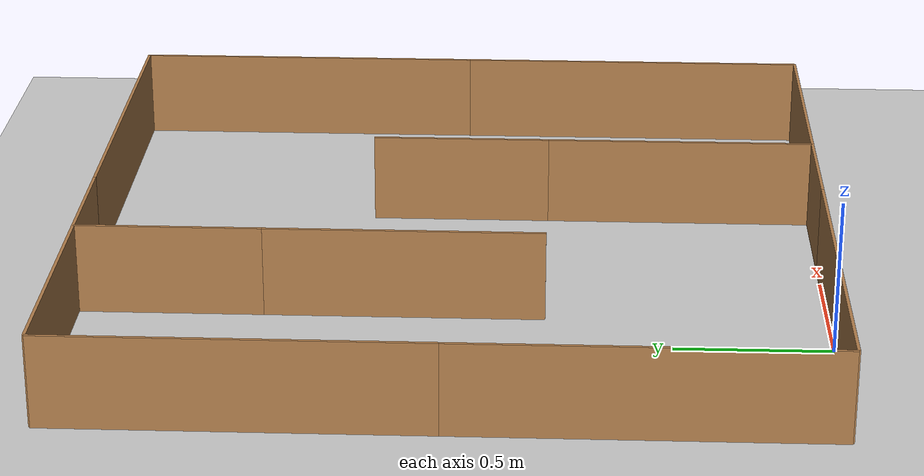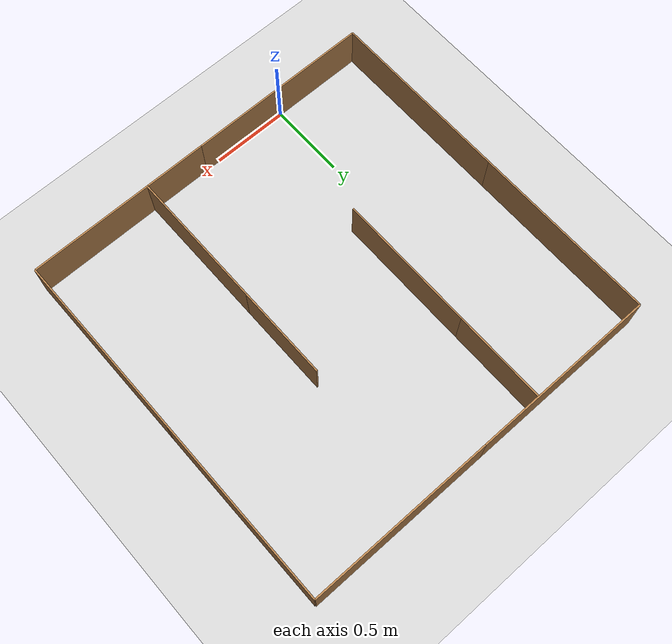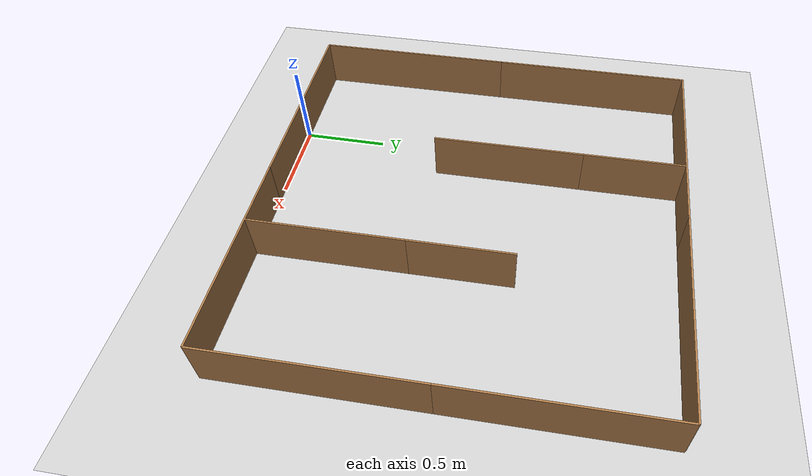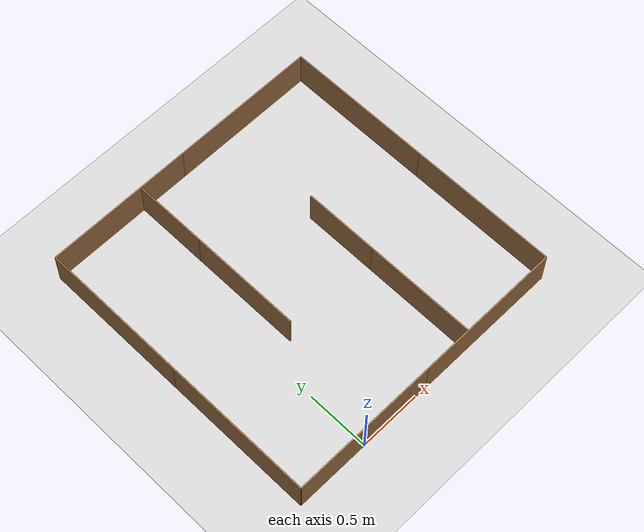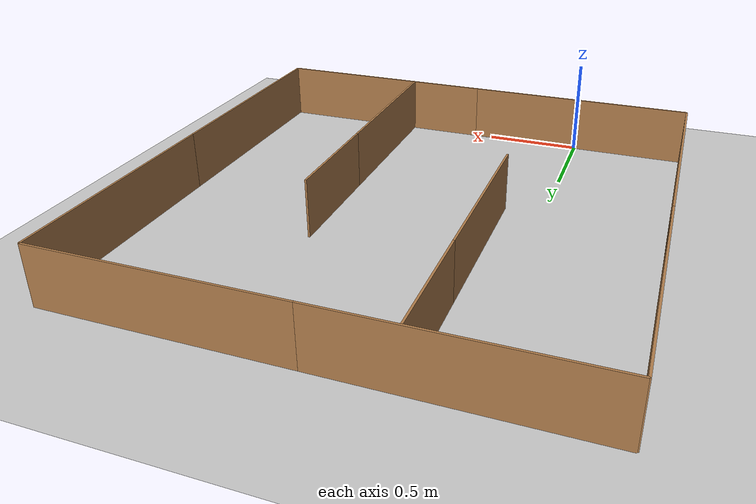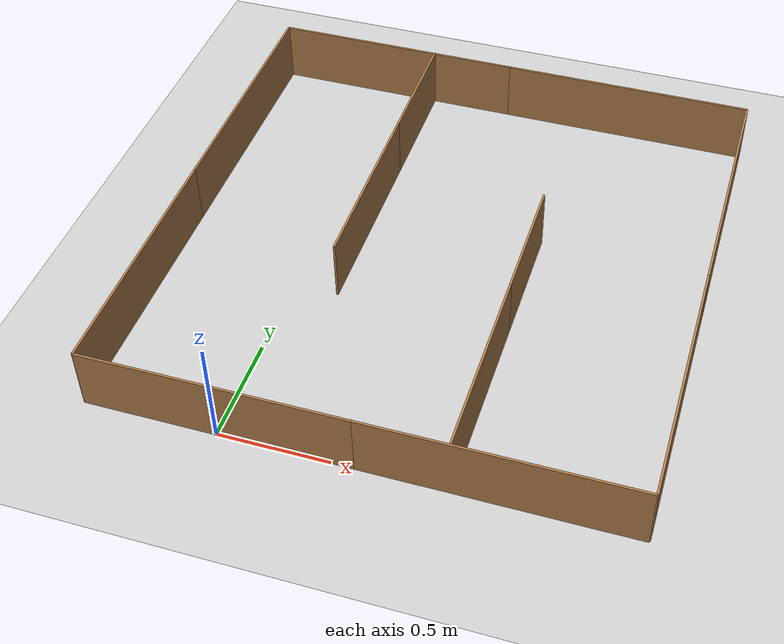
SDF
<sdf version="1.7">
 <world name="default">
  <light name="sun" type="directional">
   <pose>0 0 10 0 -0 0</pose>
   <diffuse>0.8 0.8 0.8 1</diffuse>
   <specular>0.2 0.2 0.2 1</specular>
   <attenuation>
    <range>1000</range>
    <constant>0.9</constant>
    <linear>0.01</linear>
    <quadratic>0.001</quadratic>
   </attenuation>
   <direction>-0.5 0.1 -0.9</direction>
   <spot><inner_angle>0</inner_angle><outer_angle>0</outer_angle><falloff>0</falloff></spot>
  </light>
  <model name="ground_plane">
   <static>1</static>
   <link name="link">
    <collision name="collision">
     <geometry><plane><normal>0 0 1</normal><size>100 100</size></plane></geometry>
     <surface>
      <contact><collide_bitmask>65535</collide_bitmask></contact>
      <friction><ode><mu>100</mu><mu2>50</mu2></ode></friction>
     </surface>
    </collision>
    <visual name="visual">
     <cast_shadows>0</cast_shadows>
     <geometry><plane><normal>0 0 1</normal><size>100 100</size></plane></geometry>
     <material>
      <script><uri>file://media/materials/scripts/gazebo.material</uri><name>Gazebo/Grey</name></script>
     </material>
    </visual>
   </link>
  </model>
  <gravity>0 0 -9.8</gravity>
  <magnetic_field>6e-06 2.3e-05 -4.2e-05</magnetic_field>
  <atmosphere type="adiabatic"/>
  <physics type="ode">
   <max_step_size>0.001</max_step_size>
   <real_time_factor>1</real_time_factor>
   <real_time_update_rate>1000</real_time_update_rate>
  </physics>
  <scene><ambient>0.4 0.4 0.4 1</ambient><background>0.7 0.7 0.7 1</background><shadows>1</shadows></scene>
  <spherical_coordinates>
   <surface_model>EARTH_WGS84</surface_model>
   <latitude_deg>0</latitude_deg>
   <longitude_deg>0</longitude_deg>
   <elevation>0</elevation>
   <heading_deg>0</heading_deg>
  </spherical_coordinates>
  <model name="wood_1_2m">
   <link name="Wall_0">
    <collision name="Wall_0_Collision">
     <geometry><box><size>1.2 0.01 0.3</size></box></geometry>
     <pose>0 0 0.15 0 -0 0</pose>
    </collision>
    <visual name="Wall_0_Visual">
     <pose>0 0 0.15 0 -0 0</pose>
     <geometry><box><size>1.2 0.01 0.3</size></box></geometry>
     <material>
      <script><uri>file://media/materials/scripts/gazebo.material</uri><name>Gazebo/Wood</name></script>
      <ambient>1 1 1 1</ambient>
     </material>
     <meta><layer>0</layer></meta>
    </visual>
   </link>
   <static>1</static>
  </model>
  <model name="wood_1_2m_clone">
   <pose>1.2 0 0 0 -0 0</pose>
   <link name="Wall_0">
    <collision name="Wall_0_Collision">
     <geometry><box><size>1.2 0.01 0.3</size></box></geometry>
     <pose>0 0 0.15 0 -0 0</pose>
    </collision>
    <visual name="Wall_0_Visual">
     <pose>0 0 0.15 0 -0 0</pose>
     <geometry><box><size>1.2 0.01 0.3</size></box></geometry>
     <material>
      <script><uri>file://media/materials/scripts/gazebo.material</uri><name>Gazebo/Wood</name></script>
      <ambient>1 1 1 1</ambient>
     </material>
     <meta><layer>0</layer></meta>
    </visual>
   </link>
   <static>1</static>
  </model>
  <model name="wood_1_2m_clone_clone">
   <pose>-0.6 0.6 0 0 -0 1.5708</pose>
   <link name="Wall_0">
    <collision name="Wall_0_Collision">
     <geometry><box><size>1.2 0.01 0.3</size></box></geometry>
     <pose>0 0 0.15 0 -0 0</pose>
    </collision>
    <visual name="Wall_0_Visual">
     <pose>0 0 0.15 0 -0 0</pose>
     <geometry><box><size>1.2 0.01 0.3</size></box></geometry>
     <material>
      <script><uri>file://media/materials/scripts/gazebo.material</uri><name>Gazebo/Wood</name></script>
      <ambient>1 1 1 1</ambient>
     </material>
     <meta><layer>0</layer></meta>
    </visual>
   </link>
   <static>1</static>
  </model>
  <model name="wood_1_2m_clone_clone_clone">
   <pose>-0.6 1.8 0 0 -0 1.5708</pose>
   <link name="Wall_0">
    <collision name="Wall_0_Collision">
     <geometry><box><size>1.2 0.01 0.3</size></box></geometry>
     <pose>0 0 0.15 0 -0 0</pose>
    </collision>
    <visual name="Wall_0_Visual">
     <pose>0 0 0.15 0 -0 0</pose>
     <geometry><box><size>1.2 0.01 0.3</size></box></geometry>
     <material>
      <script><uri>file://media/materials/scripts/gazebo.material</uri><name>Gazebo/Wood</name></script>
      <ambient>1 1 1 1</ambient>
     </material>
     <meta><layer>0</layer></meta>
    </visual>
   </link>
   <static>1</static>
  </model>
  <model name="wood_1_2m_clone_0">
   <pose>0 2.4 0 0 -0 0</pose>
   <link name="Wall_0">
    <collision name="Wall_0_Collision">
     <geometry><box><size>1.2 0.01 0.3</size></box></geometry>
     <pose>0 0 0.15 0 -0 0</pose>
    </collision>
    <visual name="Wall_0_Visual">
     <pose>0 0 0.15 0 -0 0</pose>
     <geometry><box><size>1.2 0.01 0.3</size></box></geometry>
     <material>
      <script><uri>file://media/materials/scripts/gazebo.material</uri><name>Gazebo/Wood</name></script>
      <ambient>1 1 1 1</ambient>
     </material>
     <meta><layer>0</layer></meta>
    </visual>
   </link>
   <static>1</static>
  </model>
  <model name="wood_1_2m_clone_0_clone">
   <pose>1.2 2.4 0 0 -0 0</pose>
   <link name="Wall_0">
    <collision name="Wall_0_Collision">
     <geometry><box><size>1.2 0.01 0.3</size></box></geometry>
     <pose>0 0 0.15 0 -0 0</pose>
    </collision>
    <visual name="Wall_0_Visual">
     <pose>0 0 0.15 0 -0 0</pose>
     <geometry><box><size>1.2 0.01 0.3</size></box></geometry>
     <material>
      <script><uri>file://media/materials/scripts/gazebo.material</uri><name>Gazebo/Wood</name></script>
      <ambient>1 1 1 1</ambient>
     </material>
     <meta><layer>0</layer></meta>
    </visual>
   </link>
   <static>1</static>
  </model>
  <model name="wood_1_2m_clone_clone_clone_0">
   <pose>1.8 0.6 0 0 -0 1.5708</pose>
   <link name="Wall_0">
    <collision name="Wall_0_Collision">
     <geometry><box><size>1.2 0.01 0.3</size></box></geometry>
     <pose>0 0 0.15 0 -0 0</pose>
    </collision>
    <visual name="Wall_0_Visual">
     <pose>0 0 0.15 0 -0 0</pose>
     <geometry><box><size>1.2 0.01 0.3</size></box></geometry>
     <material>
      <script><uri>file://media/materials/scripts/gazebo.material</uri><name>Gazebo/Wood</name></script>
      <ambient>1 1 1 1</ambient>
     </material>
     <meta><layer>0</layer></meta>
    </visual>
   </link>
   <static>1</static>
  </model>
  <model name="wood_1_2m_clone_clone_clone_0_clone">
   <pose>1.8 1.8 0 0 -0 1.5708</pose>
   <link name="Wall_0">
    <collision name="Wall_0_Collision">
     <geometry><box><size>1.2 0.01 0.3</size></box></geometry>
     <pose>0 0 0.15 0 -0 0</pose>
    </collision>
    <visual name="Wall_0_Visual">
     <pose>0 0 0.15 0 -0 0</pose>
     <geometry><box><size>1.2 0.01 0.3</size></box></geometry>
     <material>
      <script><uri>file://media/materials/scripts/gazebo.material</uri><name>Gazebo/Wood</name></script>
      <ambient>1 1 1 1</ambient>
     </material>
     <meta><layer>0</layer></meta>
    </visual>
   </link>
   <static>1</static>
  </model>
  <model name="wood_0_6m_clone_0_clone">
   <pose>0.2 2.1 0 0 -0 1.5708</pose>
   <link name="Wall_0">
    <collision name="Wall_0_Collision">
     <geometry><box><size>0.6 0.01 0.3</size></box></geometry>
     <pose>0 0 0.15 0 -0 0</pose>
    </collision>
    <visual name="Wall_0_Visual">
     <pose>0 0 0.15 0 -0 0</pose>
     <geometry><box><size>0.6 0.01 0.3</size></box></geometry>
     <material>
      <script><uri>file://media/materials/scripts/gazebo.material</uri><name>Gazebo/Wood</name></script>
      <ambient>1 1 1 1</ambient>
     </material>
     <meta><layer>0</layer></meta>
    </visual>
   </link>
   <static>1</static>
  </model>
  <model name="wood_0_6m_clone_0_clone_clone">
   <pose>1 1.2 0 0 -0 1.5708</pose>
   <link name="Wall_0">
    <collision name="Wall_0_Collision">
     <geometry><box><size>0.6 0.01 0.3</size></box></geometry>
     <pose>0 0 0.15 0 -0 0</pose>
    </collision>
    <visual name="Wall_0_Visual">
     <pose>0 0 0.15 0 -0 0</pose>
     <geometry><box><size>0.6 0.01 0.3</size></box></geometry>
     <material>
      <script><uri>file://media/materials/scripts/gazebo.material</uri><name>Gazebo/Wood</name></script>
      <ambient>1 1 1 1</ambient>
     </material>
     <meta><layer>0</layer></meta>
    </visual>
   </link>
   <static>1</static>
  </model>
  <model name="wood_0_9m">
   <pose>0.2 1.35 0 0 -0 1.5708</pose>
   <link name="Wall_0">
    <collision name="Wall_0_Collision">
     <geometry><box><size>0.9 0.01 0.3</size></box></geometry>
     <pose>0 0 0.15 0 -0 0</pose>
    </collision>
    <visual name="Wall_0_Visual">
     <pose>0 0 0.15 0 -0 0</pose>
     <geometry><box><size>0.9 0.01 0.3</size></box></geometry>
     <material>
      <script><uri>file://media/materials/scripts/gazebo.material</uri><name>Gazebo/Wood</name></script>
      <ambient>1 1 1 1</ambient>
     </material>
     <meta><layer>0</layer></meta>
    </visual>
   </link>
   <static>1</static>
  </model>
  <model name="wood_0_9m_clone">
   <pose>1 0.45 0 0 -0 1.5708</pose>
   <link name="Wall_0">
    <collision name="Wall_0_Collision">
     <geometry><box><size>0.9 0.01 0.3</size></box></geometry>
     <pose>0 0 0.15 0 -0 0</pose>
    </collision>
    <visual name="Wall_0_Visual">
     <pose>0 0 0.15 0 -0 0</pose>
     <geometry><box><size>0.9 0.01 0.3</size></box></geometry>
     <material>
      <script><uri>file://media/materials/scripts/gazebo.material</uri><name>Gazebo/Wood</name></script>
      <ambient>1 1 1 1</ambient>
     </material>
     <meta><layer>0</layer></meta>
    </visual>
   </link>
   <static>1</static>
  </model>
 </world>
</sdf>
